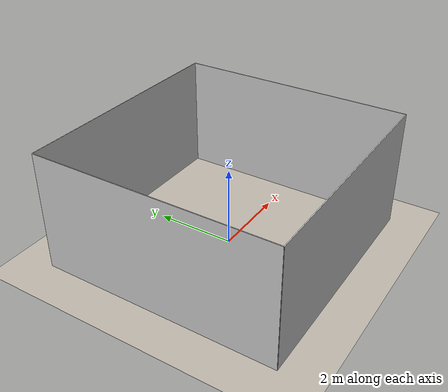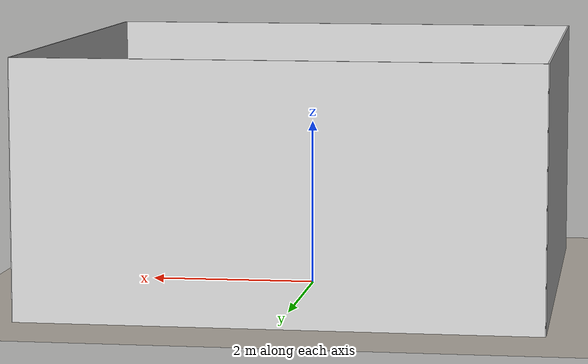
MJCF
<mujoco model="studyroom">
    <compiler angle="radian" autolimits="true"/>
  <default>
    <default class="visual">
      <geom group="2" type="mesh" contype="0" conaffinity="0"/>
    </default>
    <default class="collision">
      <geom group="3" type="mesh"/>
    </default>
  </default>
    <asset>
        <texture type="skybox" builtin="gradient" rgb1=".9 .9 .9" rgb2=".9 .9 .9" width="100" height="100"/>
        <texture file="textures/tile_grigia_caldera_porcelain_floor.png" type="2d" name="texplane"/>

        <material name="floorplane" reflectance="0.0" shininess="0.0"
	        specular="0.0" texrepeat="3 3" texture="texplane" texuniform="true"/>
        <texture file="textures/smooth_light_gray_plaster.png" type="2d" name="tex-wall"/>
        <material name="walls_mat" reflectance="0.0" shininess="0.1" specular="0.8" texrepeat="3 3" texture="tex-wall" texuniform="true" />
        <material name="white" rgba="1 1 1 1"/>
        <material name="gray" rgba="0.753 0.753 0.753 1"/>
        <material name="black" rgba="0.149 0.149 0.149 1"/>
    </asset>

  <asset>
    <material name="Birch_Wood_Flooring__English" specular="0.5" shininess="0.5" rgba="0.800000 0.800000 0.800000 1.000000"/>
    <material name="Bras" specular="1.0" shininess="0.349173584" rgba="0.006542 0.005584 0.005001 1.000000"/>
    <material name="Bras.001" specular="1.0" shininess="0.349173584" rgba="0.006542 0.005584 0.005001 1.000000"/>
    <material name="Coffee_Cup_-_Coffee" specular="0.5" shininess="1.0" rgba="1.000000 0.814549 0.542377 1.000000"/>
    <texture type="2d" name="coffee_foam" file="studyroom/coffee_foam.png"/>
    <material name="Coffee_Cup_-_Foam" texture="coffee_foam" specular="0.5" shininess="0.5184000240000001"/>
    <material name="Coffee_Cup_-_Glass" specular="0.5" shininess="1.0" rgba="1.000000 1.000000 1.000000 1.000000"/>
    <material name="Coffee_Cup_-_Metal" specular="0.5" shininess="0.81" rgba="0.638283 0.638283 0.638283 1.000000"/>
    <texture type="2d" name="Fabric036_2K_Color" file="studyroom/Fabric036_2K_Color.png"/>
    <material name="Fabric.001" texture="Fabric036_2K_Color" specular="0.5" shininess="0.5"/>
    <material name="Fabric.002" texture="Fabric036_2K_Color" specular="0.5" shininess="0.5"/>
    <material name="Fabric_Upholstery_001a.001" specular="0.5" shininess="0.5" rgba="1.0 1.0 1.0 1.000000"/>
    <material name="Grapes_of_Wrath" specular="0.5" shininess="0.019855367999999998" rgba="0.800000 0.800000 0.800000 1.000000"/>
    <material name="Heater_Paint" specular="0.5" shininess="0.5625" rgba="0.742438 0.742438 0.742438 1.000000"/>
    <material name="Heater_Paint.001" specular="0.5" shininess="0.5625" rgba="0.742438 0.742438 0.742438 1.000000"/>
    <material name="Lampion_-_Alu" specular="0.5" shininess="0.64" rgba="0.715076 0.715076 0.715076 1.000000"/>
    <material name="Lampion_-_Cire" specular="0.5" shininess="0.49" rgba="0.800000 0.800000 0.800000 1.000000"/>
    <material name="Lampion_-_Flamme" specular="0.5" shininess="0.25" rgba="1.0 1.0 1.0 1.0"/>
    <material name="Lampion_-_meche" specular="0.0" shininess="0.0" rgba="0.006029 0.006029 0.006029 1.000000"/>
    <material name="Leather_Fabric_01" specular="0.5" shininess="0.25" rgba="0.800000 0.800000 0.800000 1.000000"/>
    <material name="Leather_Fabric_01.002" specular="0.5" shininess="0.25" rgba="0.800000 0.800000 0.800000 1.000000"/>
    <material name="MEtal" specular="1.0" shininess="0.436722626" rgba="0.184429 0.184429 0.184429 1.000000"/>
    <material name="MEtal.001" specular="1.0" shininess="0.436722626" rgba="0.184429 0.184429 0.184429 1.000000"/>
    <material name="Material.001" specular="0.5" shininess="0.36" rgba="0.800000 0.800000 0.800000 1.000000"/>
    <material name="Material.002" specular="0.5" shininess="0.084628113" rgba="0.597202 0.502886 0.462077 1.000000"/>
    <material name="Material.003" specular="0.5" shininess="0.25" rgba="0.800000 0.800000 0.800000 1.000000"/>
    <material name="Material.004" specular="0.5" shininess="0.109100082" rgba="0.552011 0.491021 0.439657 1.000000"/>
    <texture type="2d" name="photo-1550850587-cd99d1b19677" file="studyroom/photo-1550850587-cd99d1b19677.png"/>
    <material name="Material.005" texture="photo-1550850587-cd99d1b19677" specular="0.5" shininess="0.25"/>
    <texture type="2d" name="flower.001" file="studyroom/flower.001.png"/>
    <material name="Material.007" texture="flower.001" specular="0.5" shininess="0.25"/>
    <material name="Material.008" specular="0.5" shininess="0.25" rgba="0.000000 0.000000 0.000000 1.000000"/>
    <material name="Material.009" specular="0.5" shininess="0.25" rgba="0.800000 0.800000 0.800000 1.000000"/>
    <material name="Material.010" specular="0.5" shininess="0.25" rgba="0.031060 0.031060 0.031060 1.000000"/>
    <material name="Material.011" specular="0.5" shininess="0.0" rgba="0.506994 0.530318 0.512767 1.000000"/>
    <material name="Material.012" specular="0.5" shininess="0.25" rgba="0.014667 0.014667 0.014667 1.000000"/>
    <material name="Material.013" specular="0.5" shininess="0.25" rgba="0.648121 0.669150 0.669150 1.000000"/>
    <material name="Material.021" specular="0.5" shininess="0.0" rgba="0.516353 0.508792 0.471961 1.000000"/>
    <material name="Material.023" specular="0.5" shininess="0.08113864100000001" rgba="0.800000 0.800000 0.800000 1.000000"/>
    <material name="Matt_paint_black" specular="0.5" shininess="0.36" rgba="0.029244 0.029244 0.029244 1.000000"/>
    <material name="Matt_paint_white" specular="0.5" shininess="0.25" rgba="0.800000 0.800000 0.800000 1.000000"/>
    <material name="Metal08_PBR" specular="0.5" shininess="0.36" rgba="0.800000 0.800000 0.800000 1.000000"/>
    <material name="Metal_scratched" specular="0.5" shininess="0.36" rgba="0.800000 0.800000 0.800000 1.000000"/>
    <material name="Metal_scratched.001" specular="0.5" shininess="0.36" rgba="0.800000 0.800000 0.800000 1.000000"/>
    <material name="Metal_scratched.002" specular="0.5" shininess="0.36" rgba="0.800000 0.800000 0.800000 1.000000"/>
    <material name="Old_Wood_procedural_2" specular="0.5" shininess="0.10123967" rgba="0.001343 0.001343 0.001343 1.000000"/>
    <material name="Plastic" specular="0.5" shininess="0.349173584" rgba="0.470078 0.470078 0.470078 1.000000"/>
    <material name="Plastic.001" specular="0.5" shininess="0.349173584" rgba="0.470078 0.470078 0.470078 1.000000"/>
    <material name="Round_Towel_Hanger_Fabric" specular="0.5" shininess="0.36" rgba="0.800000 0.800000 0.800000 1.000000"/>
    <material name="Tecido" specular="0.5" shininess="0.25" rgba="0.800000 0.800000 0.800000 1.000000"/>
    <material name="Tecido.003" specular="0.5" shininess="0.25" rgba="0.800000 0.800000 0.800000 1.000000"/>
    <material name="Tecido.004" specular="0.5" shininess="0.010000005" rgba="0.800000 0.800000 0.800000 1.000000"/>
    <material name="Tecido.005" specular="0.5" shininess="0.0" rgba="0.800000 0.800000 0.800000 1.000000"/>
    <material name="book_cover" specular="0.5" shininess="0.25" rgba="0.401989 0.355776 0.390127 1.000000"/>
    <material name="book_cover.001" specular="0.5" shininess="0.25" rgba="0.401989 0.355776 0.390127 1.000000"/>
    <material name="book_cover.002" specular="0.5" shininess="0.25" rgba="0.401989 0.355776 0.390127 1.000000"/>
    <material name="book_cover.003" specular="0.5" shininess="0.25" rgba="0.401989 0.355776 0.390127 1.000000"/>
    <material name="book_cover.004" specular="0.5" shininess="0.25" rgba="0.401989 0.355776 0.390127 1.000000"/>
    <material name="book_cover.005" specular="0.5" shininess="0.25" rgba="0.401989 0.355776 0.390127 1.000000"/>
    <material name="rattan" specular="0.20000000000000004" shininess="0.5" rgba="1.0 1.0 1.0 1.000000"/>
    <material name="stacked_paper.001" specular="0.5" shininess="0.058402782" rgba="1.000000 1.000000 1.000000 1.000000"/>
    <material name="stacked_paper.002" specular="0.5" shininess="0.058402782" rgba="1.000000 1.000000 1.000000 1.000000"/>
    <material name="stacked_paper.003" specular="0.5" shininess="0.058402782" rgba="1.000000 1.000000 1.000000 1.000000"/>
    <material name="stacked_paper.004" specular="0.5" shininess="0.058402782" rgba="1.000000 1.000000 1.000000 1.000000"/>
    <material name="stacked_paper.005" specular="0.5" shininess="0.058402782" rgba="1.000000 1.000000 1.000000 1.000000"/>
    <material name="stacked_paper.006" specular="0.5" shininess="0.058402782" rgba="1.000000 1.000000 1.000000 1.000000"/>
    <mesh file="studyroom/studyroom_1.obj"/>
    <mesh file="studyroom/studyroom_2.obj"/>
    <mesh file="studyroom/studyroom_3.obj"/>
    <mesh file="studyroom/studyroom_5.obj"/>
    <mesh file="studyroom/studyroom_6.obj"/>
    <mesh file="studyroom/studyroom_7.obj"/>
    <mesh file="studyroom/studyroom_8.obj"/>
    <mesh file="studyroom/studyroom_10.obj"/>
    <mesh file="studyroom/studyroom_11.obj"/>
    <mesh file="studyroom/studyroom_12.obj"/>
    <mesh file="studyroom/studyroom_13.obj"/>
    <mesh file="studyroom/studyroom_14.obj"/>
    <mesh file="studyroom/studyroom_15.obj"/>
    <mesh file="studyroom/studyroom_16.obj"/>
    <mesh file="studyroom/studyroom_18.obj"/>
    <mesh file="studyroom/studyroom_19.obj"/>
    <mesh file="studyroom/studyroom_20.obj"/>
    <mesh file="studyroom/studyroom_21.obj"/>
    <mesh file="studyroom/studyroom_22.obj"/>
    <mesh file="studyroom/studyroom_23.obj"/>
    <mesh file="studyroom/studyroom_24.obj"/>
    <mesh file="studyroom/studyroom_25.obj"/>
    <mesh file="studyroom/studyroom_26.obj"/>
    <mesh file="studyroom/studyroom_27.obj"/>
    <mesh file="studyroom/studyroom_28.obj"/>
    <mesh file="studyroom/studyroom_29.obj"/>
    <mesh file="studyroom/studyroom_30.obj"/>
    <mesh file="studyroom/studyroom_32.obj"/>
    <mesh file="studyroom/studyroom_33.obj"/>
    <mesh file="studyroom/studyroom_34.obj"/>
    <mesh file="studyroom/studyroom_35.obj"/>
    <mesh file="studyroom/studyroom_36.obj"/>
    <mesh file="studyroom/studyroom_37.obj"/>
    <mesh file="studyroom/studyroom_38.obj"/>
    <mesh file="studyroom/studyroom_39.obj"/>
    <mesh file="studyroom/studyroom_40.obj"/>
    <mesh file="studyroom/studyroom_41.obj"/>
    <mesh file="studyroom/studyroom_42.obj"/>
    <mesh file="studyroom/studyroom_43.obj"/>
    <mesh file="studyroom/studyroom_44.obj"/>
    <mesh file="studyroom/studyroom_45.obj"/>
    <mesh file="studyroom/studyroom_46.obj"/>
    <mesh file="studyroom/studyroom_47.obj"/>
    <mesh file="studyroom/studyroom_48.obj"/>
    <mesh file="studyroom/studyroom_49.obj"/>
    <mesh file="studyroom/studyroom_50.obj"/>
    <mesh file="studyroom/studyroom_51.obj"/>
    <mesh file="studyroom/studyroom_52.obj"/>
    <mesh file="studyroom/studyroom_53.obj"/>
    <mesh file="studyroom/studyroom_54.obj"/>
    <mesh file="studyroom/studyroom_55.obj"/>
    <mesh file="studyroom/studyroom_56.obj"/>
    <mesh file="studyroom/studyroom_57.obj"/>
    <mesh file="studyroom/studyroom_58.obj"/>
    <mesh file="studyroom/studyroom_59.obj"/>
    <mesh file="studyroom/studyroom_60.obj"/>

    <mesh file="studyroom/whiite_bookshelf.obj" scale="0.2 0.2 0.2"/>
  </asset>

  <asset>
    <texture type="2d" name="prop_books_01_mt_Base_Color" file="studyroom/bookshelf/prop_books_01_mt_Base_Color.png"/>
    <material name="BOOKS" texture="prop_books_01_mt_Base_Color" specular="0.5" shininess="0.171483734"/>
    <texture type="2d" name="shkaff_Mat_albedo" file="studyroom/bookshelf/shkaff_Mat_albedo.png"/>
    <material name="SHKAFF_MAT" texture="shkaff_Mat_albedo" specular="0.5" shininess="1.0"/>
    <texture type="2d" name="shkaff_silver_albedo" file="studyroom/bookshelf/shkaff_silver_albedo.png"/>
    <material name="SHKAF_ALBEDO" texture="shkaff_silver_albedo" specular="0.5" shininess="0.557152344"/>
    <texture type="2d" name="cp1" file="studyroom/bookshelf/cp1.png"/>
    <material name="cp1" texture="cp1" specular="1.0" shininess="0.319999939"/>
    <texture type="2d" name="cp10" file="studyroom/bookshelf/cp10.png"/>
    <material name="cp2" texture="cp10" specular="1.0" shininess="0.319999939"/>
    <texture type="2d" name="cp2" file="studyroom/bookshelf/cp2.png"/>
    <material name="cp3" texture="cp2" specular="1.0" shininess="0.319999939"/>
    <texture type="2d" name="cp3" file="studyroom/bookshelf/cp3.png"/>
    <material name="cp4" texture="cp3" specular="1.0" shininess="0.319999939"/>
    <texture type="2d" name="cp4" file="studyroom/bookshelf/cp4.png"/>
    <material name="cp5" texture="cp4" specular="1.0" shininess="0.319999939"/>
    <texture type="2d" name="cp5" file="studyroom/bookshelf/cp5.png"/>
    <material name="cp6" texture="cp5" specular="1.0" shininess="0.319999939"/>
    <texture type="2d" name="cp6" file="studyroom/bookshelf/cp6.png"/>
    <material name="cp7" texture="cp6" specular="1.0" shininess="0.319999939"/>
    <texture type="2d" name="cp7" file="studyroom/bookshelf/cp7.png"/>
    <material name="cp8" texture="cp7" specular="1.0" shininess="0.319999939"/>
    <texture type="2d" name="cp8" file="studyroom/bookshelf/cp8.png"/>
    <material name="cp9" texture="cp8" specular="1.0" shininess="0.319999939"/>
    <mesh file="studyroom/bookshelf/bookshelf_0.obj" scale="0.5 0.5 0.5"/>
    <mesh file="studyroom/bookshelf/bookshelf_1.obj" scale="0.5 0.5 0.5"/>
    <mesh file="studyroom/bookshelf/bookshelf_2.obj" scale="0.5 0.5 0.5"/>
    <mesh file="studyroom/bookshelf/bookshelf_3.obj" scale="0.5 0.5 0.5"/>
    <mesh file="studyroom/bookshelf/bookshelf_4.obj" scale="0.5 0.5 0.5"/>
    <mesh file="studyroom/bookshelf/bookshelf_5.obj" scale="0.5 0.5 0.5"/>
    <mesh file="studyroom/bookshelf/bookshelf_6.obj" scale="0.5 0.5 0.5"/>
    <mesh file="studyroom/bookshelf/bookshelf_7.obj" scale="0.5 0.5 0.5"/>
    <mesh file="studyroom/bookshelf/bookshelf_8.obj" scale="0.5 0.5 0.5"/>
    <mesh file="studyroom/bookshelf/bookshelf_9.obj" scale="0.5 0.5 0.5"/>
    <mesh file="studyroom/bookshelf/bookshelf_10.obj" scale="0.5 0.5 0.5"/>
    <mesh file="studyroom/bookshelf/bookshelf_11.obj" scale="0.5 0.5 0.5"/>
  </asset>

  <worldbody>
    <geom condim="3" group="1" material="floorplane" name="floor" pos="0 0 0" size="4 4 .125" type="plane"/>
    <geom pos="0 3 1.5" quat="0.7071 0.7071 0 0" size="3 1.5 0.01" type="box" conaffinity="0" contype="0" group="1" name="wall_left_visual" material="walls_mat"/>
    <geom pos="0 -3 1.5" quat="0.7071 -0.7071 0 0" size="3 1.5 0.01" type="box" conaffinity="0" contype="0" group="1" name="wall_right_visual" material="walls_mat"/>
    <geom pos="-3 0 1.5" quat="0.5 0.5 0.5 0.5" size="3 1.5 0.01" type="box" conaffinity="0" contype="0" group="1" name="wall_rear_visual" material="walls_mat"/>
    <geom pos="3 0 1.5" quat="0.5 0.5 -0.5 -0.5" size="3 1.5 0.01" type="box" conaffinity="0" contype="0" group="1" name="wall_front_visual" material="walls_mat"/>
    <light pos="0 0 7" dir="0 0 -1" directional="true" ambient="0.2 0.2 0.2" diffuse="0.5 0.5 0.5" specular="0. 0. 0." castshadow="true"/>

    <body name="studyroom" pos="0 0 0" euler="1.57 0 0">
    </body>

  </worldbody>
</mujoco>
